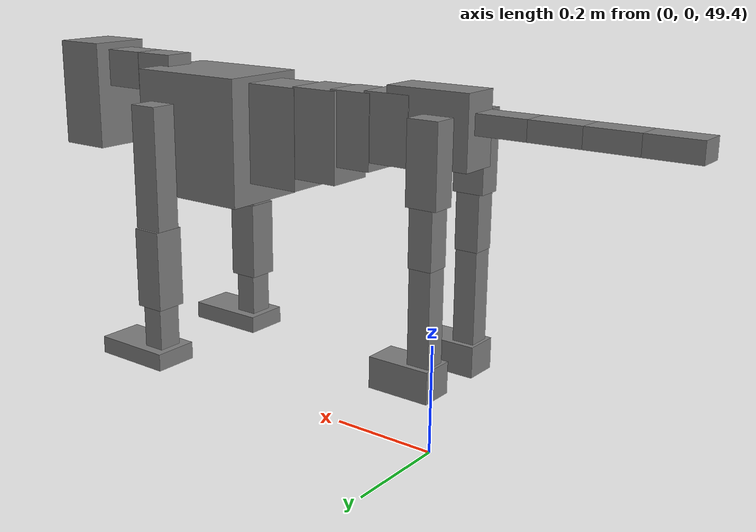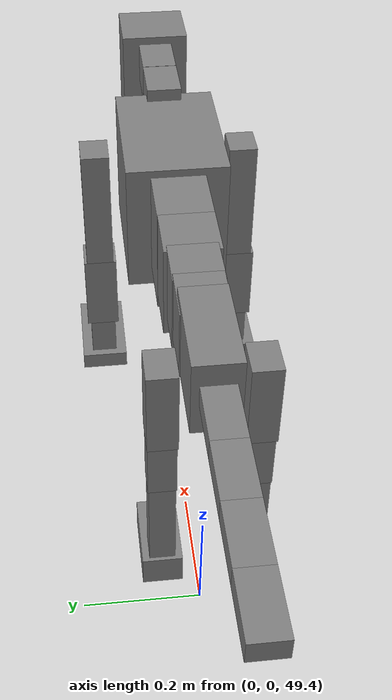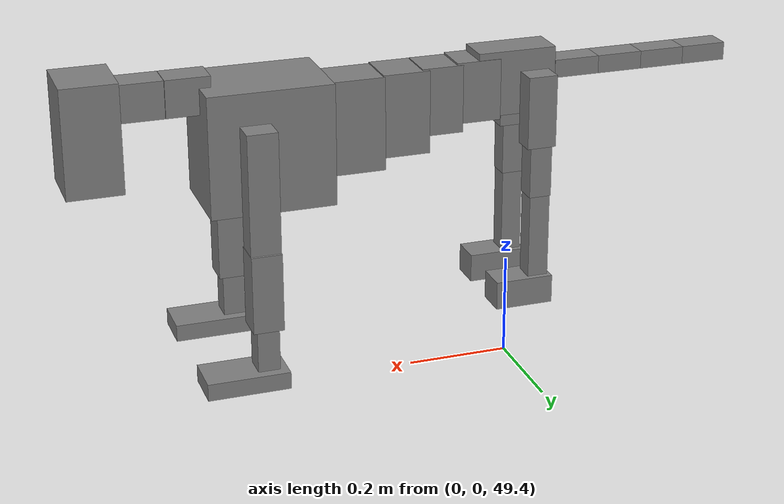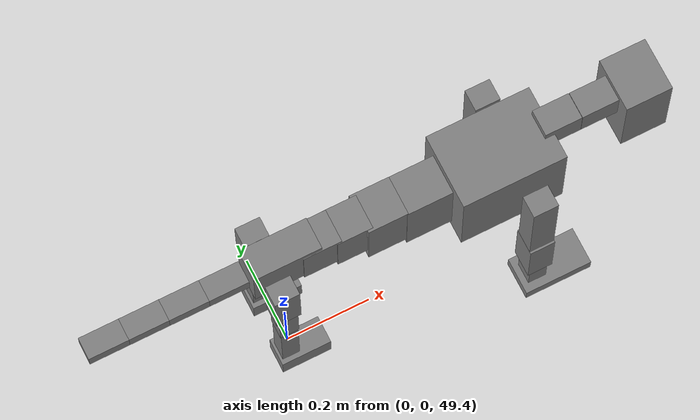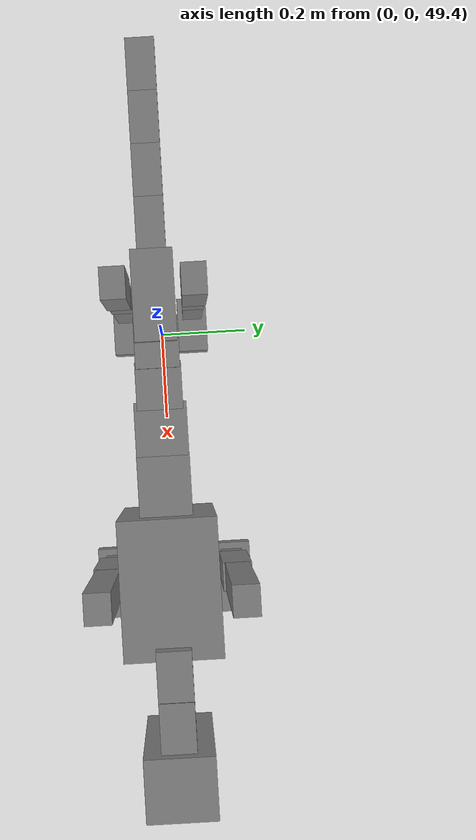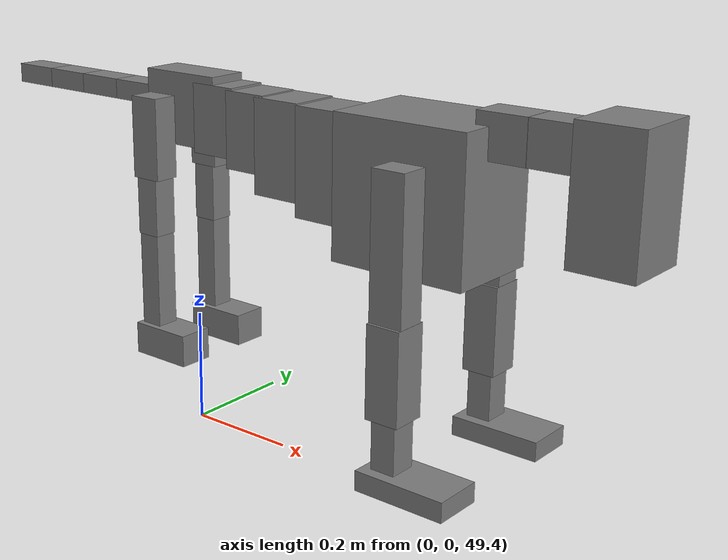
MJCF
<mujoco model="dog">

    <default>
        <joint armature="0.02" stiffness="1" damping="0.2" limited="true"/>
        <geom condim="3" friction="1 0.05 0.05" margin="0.01"/>
        <motor ctrllimited="true" ctrlrange="-1.0 1.0" forcelimited="true" gear="50"/>
    </default>

    <compiler inertiafromgeom="true" angle="radian"/>

    <option timestep="0.016" iterations="50" tolerance="1e-10" solver="Newton" jacobian="dense" cone="pyramidal"/>

    <size nconmax="20000" njmax="60000" nstack="5000000"/>
    <visual>
        <map force="0.1" zfar="30"/>
        <rgba haze="0.15 0.25 0.35 1"/>
        <quality shadowsize="2048"/>
        <global offwidth="800" offheight="800"/>
    </visual>

    <asset>
        <texture type="skybox" builtin="gradient" rgb1="0.3 0.5 0.7" rgb2="0 0 0" width="512" height="512"/>
        <texture name="texplane" type="2d" builtin="checker" rgb1=".2 .3 .4" rgb2=".1 0.15 0.2" width="512" height="512"
                 mark="cross" markrgb=".8 .8 .8"/>
        <texture name="texgeom" type="cube" builtin="flat" mark="cross" width="127" height="1278" rgb1="0.8 0.6 0.4"
                 rgb2="0.8 0.6 0.4" markrgb="1 1 1" random="0.01"/>

        <material name="matplane" reflectance="0.3" texture="texplane" texrepeat="1 1" texuniform="true"/>
        <material name="matgeom" texture="texgeom" texuniform="true" rgba="0.8 0.6 .4 1"/>
    </asset>

    <worldbody>
        <geom name="floor" pos="0 0 0" size="0 0 .25" type="plane" material="matplane" condim="3"/>

        <light directional="false" diffuse=".2 .2 .2" specular="0 0 0" pos="0 0 5" dir="0 0 -1" castshadow="false"/>
        <light mode="targetbodycom" target="torso" directional="false" diffuse=".8 .8 .8" specular="0.3 0.3 0.3"
               pos="0 0 4.0" dir="0 0 -1"/>

        <body name="root" pos="0 0 50">
            <freejoint name="root_1"/>
            <geom type="box" pos="0 0 -0.02" size="0.0774  0.0358  0.063" density="2030"/>

            <body name="spine1" pos="0.054 0 0">
                <joint name="spine1_y" axis="0 1 0" range="0 0.7" limited="true"/>
                <geom type="box" pos="0.02375 0 -0.03" size="0.04375  0.0375  0.05985" density="2030"/>

                <body name="spine2" pos="0.0612 0 0">
                    <joint name="spine2_y" axis="0 1 0" range="-0.15 0.15" limited="true"/>
                    <geom type="box" pos="0.03555  0  -0.04" size="0.04055  0.039  0.06615" density="2030"/>

                    <body name="spine3" pos="0.0730 0 0">
                        <joint name="spine3_y" axis="0 1 0" range="-0.15 0.15" limited="true"/>
                        <geom type="box" pos="0.03555  0  -0.057" size="0.04555  0.0445  0.081" density="2030"/>

                        <body name="spine4" pos="0.0780 0 0">
                            <joint name="spine4_y" axis="0 1 0" range="-0.15 0.15" limited="true"/>
                            <geom type="box" pos="0.05265  0  -0.07" size="0.05265  0.045  0.09135" density="2030"/>

                            <body name="torso" pos="0.1082 0 0">
                                <joint name="torso_y" axis="0 1 0" range="-0.15 0.15" limited="true"/>
                                <geom type="box" pos="0.11925  0  -0.085" size="0.11925  0.085  0.11745"
                                      density="2030"/>

                                <body name="neck1" pos="0.2160  0   0.0180">
                                    <joint name="neck1_y" axis="0 1 0" range="-1.2  -1" limited="true"/>
                                    <geom type="box" pos="0.0423  0  0" size="0.0423  0.03  0.036" density="2325"/>

                                    <body name="neck2" pos="0.0853  0  0">
                                        <joint name="neck2_y" axis="0 1 0" range="0.1  0" limited="true"/>
                                        <geom type="box" pos="0.0423  0  0" size="0.0423  0.03  0.036" density="2325"/>

                                        <body name="head" pos="0.0853  0  0">
                                            <joint name="head_y" axis="0 1 0" range="-0.3  -0.2" limited="true"/>
                                            <geom type="box" pos="0.0531  0  -0.055" size="0.0531  0.06  0.1044"
                                                  density="4030"/>

                                        </body>
                                    </body>
                                </body>

                                <body name="front_shoulder" pos="0.156  0   -0.0480">
                                    <joint name="front_shoulder_y" axis="0 1 0" range="-1 1.5" limited="true"/>
                                    <geom type="box" pos="0 0.13 -0.1027" size="0.0289  0.0247  0.1294" density="1158"/>
                                    <geom type="box" pos="0 -0.13 -0.1027" size="0.0289  0.0247  0.1294"
                                          density="1158"/>

                                    <body name="front_elbow" pos="0  0  -0.2054">
                                        <joint name="front_elbow_y" axis="0 1 0" range="-2 0" limited="true"/>
                                        <geom type="box" pos="0 0.13 -0.0757" size="0.0291  0.0297  0.0757"
                                              density="1081"/>
                                        <geom type="box" pos="0 -0.13 -0.0757" size="0.0291  0.0297  0.0757"
                                              density="1081"/>

                                        <body name="front_wrist" pos="0  0  -0.1514">
                                            <joint name="front_wrist_y" axis="0 1 0" range="-0.2 0" limited="true"/>
                                            <geom type="box" pos="0 0.13 -0.0481" size="0.0212  0.0235  0.0613"
                                                  density="1664"/>
                                            <geom type="box" pos="0 -0.13 -0.0481" size="0.0212  0.0235  0.0613"
                                                  density="1664"/>

                                            <body name="front_finger_end" pos="0  0  -0.0963">
                                                <joint name="front_finger_y" axis="0 1 0" range="-0.4 1"
                                                       limited="true"/>
                                                <geom type="box" pos="0.0430  0.13  -0.0016"
                                                      size="0.0788  0.0430  0.0166" density="1515"/>
                                                <geom type="box" pos="0.0430  -0.13  -0.0016"
                                                      size="0.0788  0.0430  0.0166" density="1515"/>

                                            </body>

                                        </body>
                                    </body>
                                </body>

                            </body>
                        </body>
                    </body>
                </body>
            </body>

            <body name="back_hip" pos="-0.03 0 -0.018">
                <joint name="back_hip_y" axis="0 1 0" range="-1.5 0.3" limited="true"/>
                <geom type="box" pos="0 0.07 -0.0481" size="0.0285  0.0224  0.0709" density="1154"/>
                <geom type="box" pos="0 -0.07 -0.0481" size="0.0285  0.0224  0.0709" density="1154"/>

                <body name="back_knee" pos="0  0  -0.0963">
                    <joint name="back_knee_y" axis="0 1 0" range="0 2.8" limited="true"/>
                    <geom type="box" pos="0 0.07 -0.0535" size="0.0217  0.0214  0.0691" density="1227"/>
                    <geom type="box" pos="0 -0.07 -0.0535" size="0.0217  0.0214  0.0691" density="1227"/>

                    <body name="back_ankle" pos="0  0  -0.1071">
                        <joint name="back_ankle_y" axis="0 1 0" range="-2.2 0" limited="true"/>
                        <geom type="box" pos="0 0.07 -0.0976" size="0.0202  0.0202  0.1088" density="1284"/>
                        <geom type="box" pos="0 -0.07 -0.0976" size="0.0202  0.0202  0.1088" density="1284"/>

                        <body name="back_toe_end" pos="0  0  -0.1952">
                            <joint name="back_toe_y" axis="0 1 0" range="-0.4 1" limited="true"/>
                            <geom type="box" pos="0.0313  0.07  -0.0130" size="0.0574  0.0313  0.0280" density="1515"/>
                            <geom type="box" pos="0.0313  -0.07  -0.0130" size="0.0574  0.0313  0.0280" density="1515"/>

                        </body>
                    </body>
                </body>
            </body>

            <body name="tail1" pos="-0.074 0 -0.006">
                <joint name="tail1_y" axis="0 1 0" range="-0.2 0.2" limited="true"/>
                <geom type="box" pos="-0.0536  0  0" size="0.045  0.025  0.0175" density="1587"/>

                <body name="tail2" pos="-0.09 0 0">
                    <joint name="tail2_y" axis="0 1 0" range="-0.2 0.2" limited="true"/>
                    <geom type="box" pos="-0.0536  0  0" size="0.045  0.025  0.0175" density="1587"/>

                    <body name="tail3" pos="-0.09 0 0">
                        <joint name="tail3_y" axis="0 1 0" range="-0.2 0.2" limited="true"/>
                        <geom type="box" pos="-0.0536  0  0" size="0.045  0.025  0.0175" density="1587"/>

                        <body name="tail4" pos="-0.09 0 0">
                            <joint name="tail4_y" axis="0 1 0" range="-0.2 0.2" limited="true"/>
                            <geom type="box" pos="-0.0536  0  0" size="0.045  0.025  0.0175" density="1587"/>

                        </body>
                    </body>
                </body>
            </body>
        </body>
    </worldbody>

    <actuator>
        <motor joint="spine1_y" forcerange="-150 150     "/>
        <motor joint="spine2_y" forcerange="-150 150     "/>
        <motor joint="spine3_y" forcerange="-150 150     "/>
        <motor joint="spine4_y" forcerange="-150 150     "/>
        <motor joint="torso_y" forcerange="-150 150     "/>
        <motor joint="neck1_y" forcerange="-100 100       "/>
        <motor joint="neck2_y" forcerange="-100 100       "/>
        <motor joint="head_y" forcerange="-150 150       "/>
        <motor joint="front_shoulder_y" forcerange="-158.13 106.55"/>
        <motor joint="front_elbow_y" forcerange="-148.51 167.62"/>
        <motor joint="front_wrist_y" forcerange="-130.61 57.68"/>
        <motor joint="front_finger_y" forcerange="-91.63 97.67"/>
        <motor joint="back_hip_y" forcerange="-292.75 205.38"/>
        <motor joint="back_knee_y" forcerange="-271.13 240.39"/>
        <motor joint="back_angle_y" forcerange="-87.69 135.83"/>
        <motor joint="back_toe_y" forcerange="-106.14 64.51"/>
        <motor joint="tail1_y" forcerange="-50 50     "/>
        <motor joint="tail2_y" forcerange="-50 50     "/>
        <motor joint="tail3_y" forcerange="-50 50     "/>
        <motor joint="tail4_y" forcerange="-50 50     "/>
    </actuator>
</mujoco>
